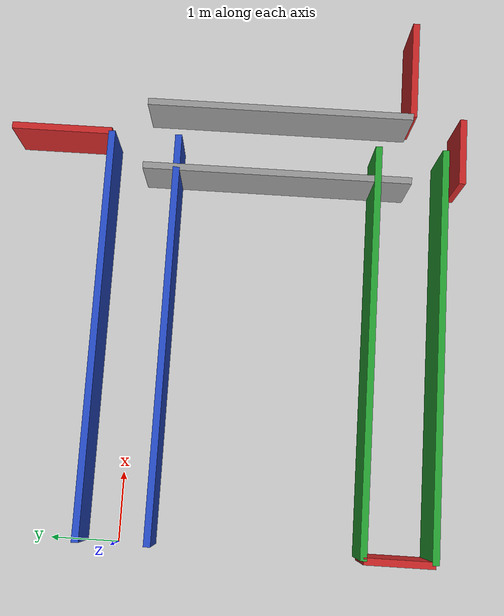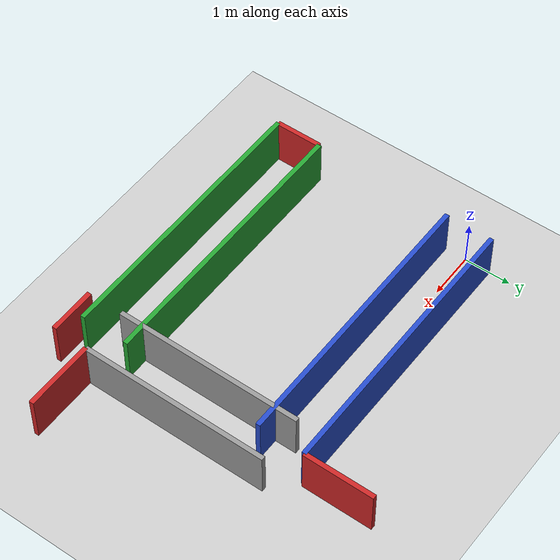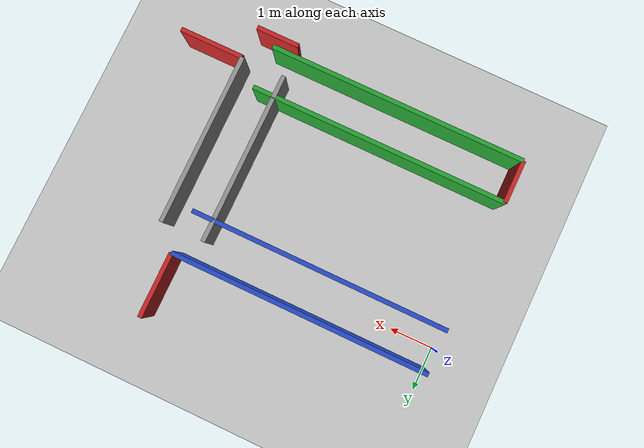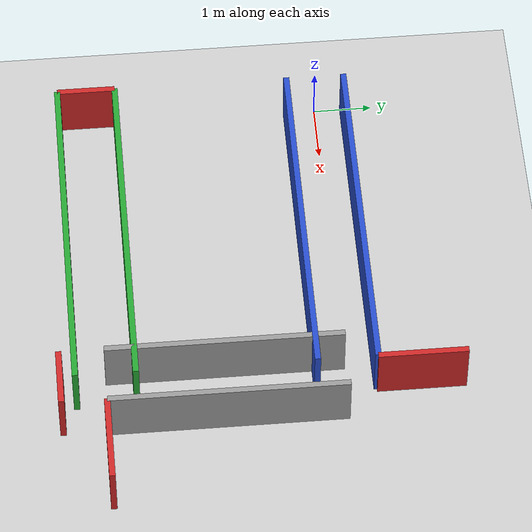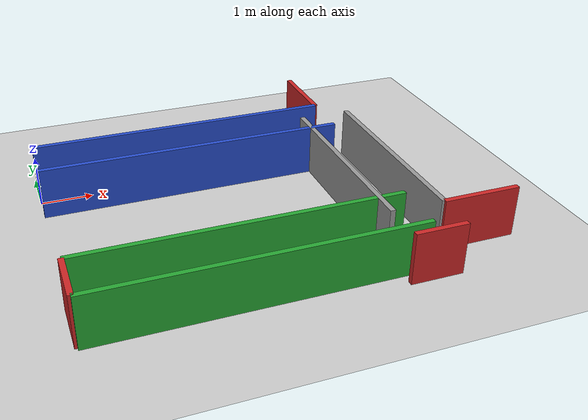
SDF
<?xml version="1.0" ?>
<sdf version="1.5">
  <world name="default">

    <include>
      <uri>model://ground_plane</uri>
    </include>

    <include>
      <uri>model://sun</uri>
    </include>

    <!-- Corridor 1: Horizontal (Start to Junction 1) -->
    <model name="wall_1">
      <static>true</static>
      <link name="link">
        <pose>3 0.5 0.5 0 0 0</pose>
        <collision name="collision">
          <geometry>
            <box>
              <size>6 0.1 1</size>
            </box>
          </geometry>
        </collision>
        <visual name="visual">
          <geometry>
            <box>
              <size>6 0.1 1</size>
            </box>
          </geometry>
          <material>
            <script>
              <uri>file://media/materials/scripts/gazebo.material</uri>
              <name>Gazebo/Blue</name>
            </script>
          </material>
        </visual>
      </link>
    </model>

    <model name="wall_2">
      <static>true</static>
      <link name="link">
        <pose>3 -0.5 0.5 0 0 0</pose>
        <collision name="collision">
          <geometry>
            <box>
              <size>6 0.1 1</size>
            </box>
          </geometry>
        </collision>
        <visual name="visual">
          <geometry>
            <box>
              <size>6 0.1 1</size>
            </box>
          </geometry>
          <material>
            <script>
              <uri>file://media/materials/scripts/gazebo.material</uri>
              <name>Gazebo/Blue</name>
            </script>
          </material>
        </visual>
      </link>
    </model>

    <!-- Junction 1 blocking wall (blocks left turn) -->
    <model name="wall_j1">
      <static>true</static>
      <link name="link">
        <pose>6 1.25 0.5 0 0 0</pose>
        <collision name="collision">
          <geometry>
            <box>
              <size>0.1 1.5 1</size>
            </box>
          </geometry>
        </collision>
        <visual name="visual">
          <geometry>
            <box>
              <size>0.1 1.5 1</size>
            </box>
          </geometry>
          <material>
            <script>
              <uri>file://media/materials/scripts/gazebo.material</uri>
              <name>Gazebo/Red</name>
            </script>
          </material>
        </visual>
      </link>
    </model>

    <!-- Corridor 2: Vertical (Junction 1 to Junction 2) -->
    <model name="wall_3">
      <static>true</static>
      <link name="link">
        <pose>5.5 -2 0.5 0 0 0</pose>
        <collision name="collision">
          <geometry>
            <box>
              <size>0.1 4 1</size>
            </box>
          </geometry>
        </collision>
        <visual name="visual">
          <geometry>
            <box>
              <size>0.1 4 1</size>
            </box>
          </geometry>
          <material>
            <script>
              <uri>file://media/materials/scripts/gazebo.material</uri>
              <name>Gazebo/Grey</name>
            </script>
          </material>
        </visual>
      </link>
    </model>

    <model name="wall_4">
      <static>true</static>
      <link name="link">
        <pose>6.5 -2 0.5 0 0 0</pose>
        <collision name="collision">
          <geometry>
            <box>
              <size>0.1 4 1</size>
            </box>
          </geometry>
        </collision>
        <visual name="visual">
          <geometry>
            <box>
              <size>0.1 4 1</size>
            </box>
          </geometry>
          <material>
            <script>
              <uri>file://media/materials/scripts/gazebo.material</uri>
              <name>Gazebo/Grey</name>
            </script>
          </material>
        </visual>
      </link>
    </model>

    <!-- Junction 2 blocking walls -->
    <model name="wall_j2_east">
      <static>true</static>
      <link name="link">
        <pose>7.25 -4 0.5 0 0 0</pose>
        <collision name="collision">
          <geometry>
            <box>
              <size>1.5 0.1 1</size>
            </box>
          </geometry>
        </collision>
        <visual name="visual">
          <geometry>
            <box>
              <size>1.5 0.1 1</size>
            </box>
          </geometry>
          <material>
            <script>
              <uri>file://media/materials/scripts/gazebo.material</uri>
              <name>Gazebo/Red</name>
            </script>
          </material>
        </visual>
      </link>
    </model>

    <model name="wall_j2_south">
      <static>true</static>
      <link name="link">
        <pose>6 -4.75 0.5 0 0 0</pose>
        <collision name="collision">
          <geometry>
            <box>
              <size>1 0.1 1</size>
            </box>
          </geometry>
        </collision>
        <visual name="visual">
          <geometry>
            <box>
              <size>1 0.1 1</size>
            </box>
          </geometry>
          <material>
            <script>
              <uri>file://media/materials/scripts/gazebo.material</uri>
              <name>Gazebo/Red</name>
            </script>
          </material>
        </visual>
      </link>
    </model>

    <!-- Corridor 3: Horizontal (Junction 2 to Target) -->
    <model name="wall_5">
      <static>true</static>
      <link name="link">
        <pose>3 -3.5 0.5 0 0 0</pose>
        <collision name="collision">
          <geometry>
            <box>
              <size>6 0.1 1</size>
            </box>
          </geometry>
        </collision>
        <visual name="visual">
          <geometry>
            <box>
              <size>6 0.1 1</size>
            </box>
          </geometry>
          <material>
            <script>
              <uri>file://media/materials/scripts/gazebo.material</uri>
              <name>Gazebo/Green</name>
            </script>
          </material>
        </visual>
      </link>
    </model>

    <model name="wall_6">
      <static>true</static>
      <link name="link">
        <pose>3 -4.5 0.5 0 0 0</pose>
        <collision name="collision">
          <geometry>
            <box>
              <size>6 0.1 1</size>
            </box>
          </geometry>
        </collision>
        <visual name="visual">
          <geometry>
            <box>
              <size>6 0.1 1</size>
            </box>
          </geometry>
          <material>
            <script>
              <uri>file://media/materials/scripts/gazebo.material</uri>
              <name>Gazebo/Green</name>
            </script>
          </material>
        </visual>
      </link>
    </model>

    <!-- Target end wall -->
    <model name="wall_target">
      <static>true</static>
      <link name="link">
        <pose>0 -4 0.5 0 0 0</pose>
        <collision name="collision">
          <geometry>
            <box>
              <size>0.1 1 1</size>
            </box>
          </geometry>
        </collision>
        <visual name="visual">
          <geometry>
            <box>
              <size>0.1 1 1</size>
            </box>
          </geometry>
          <material>
            <script>
              <uri>file://media/materials/scripts/gazebo.material</uri>
              <name>Gazebo/Red</name>
            </script>
          </material>
        </visual>
      </link>
    </model>

  </world>
</sdf>
